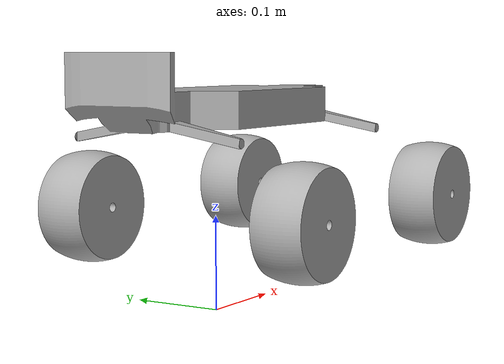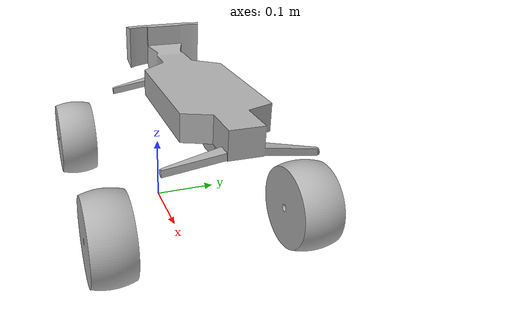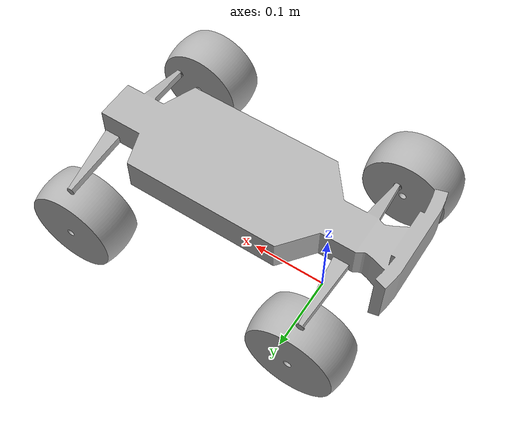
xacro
<?xml version="1.0"?>
<robot xmlns:xacro="http://www.ros.org/wiki/xacro" name="Assembly">

	<material name="silver">
		<color rgba="0.700 0.700 0.700 1.000" />
	</material>

	<xacro:include filename="colours.xacro" />

	<link name="world"></link>

	<joint name="base_joint" type="fixed">
		<origin xyz="0 0 0.2" rpy="0 0 0" />
		<parent link="world" />
		<child link="base_link" />
	</joint>

	<link name="base_link">
		<inertial>
			<origin xyz="0.08003434328119009 -4.607649372668632e-05 -0.06201622629496481"
				rpy="0 0 0" />
			<mass value="1.5183703360911072" />
			<inertia ixx="0.0021618877247405266" iyy="0.0159761652591168" izz="0.017455153748243288"
				ixy="9.179190348702562e-06" iyz="-1.1901109337122696e-07"
				ixz="0.0006927234510902391" />
		</inertial>
		<visual>
			<origin xyz="0 0 0" rpy="0 0 0" />
			<geometry>
				<mesh filename="file://$(find my_robot)/urdf/meshes/base_link.stl" scale="0.001 0.001 0.001" />
			</geometry>
			<material name="silver" />
		</visual>
		<collision>
			<origin xyz="0 0 0" rpy="0 0 0" />
			<geometry>
				<mesh filename="file://$(find my_robot)/urdf/meshes/base_link.stl" scale="0.001 0.001 0.001" />
			</geometry>
		</collision>
	</link>

	<!-- Back right -->
	<link name="Wheel3">
		<inertial>
			<origin xyz="-0.26822757912712586 -0.027500000000000177 0.0837176718765676" rpy="0 0 0" />
			<mass value="0.5775672191550699" />
			<inertia ixx="0.0006304923225378851" iyy="0.0009817859201654384"
				izz="0.0006304923225309185" ixy="-4.336808689942018e-19"
				iyz="-1.734723475976807e-18" ixz="0.0" />
		</inertial>
		<visual>
			<origin xyz="0.042788 0.1025 0.093217" rpy="0 0 0" />
			<geometry>
				<mesh filename="file://$(find my_robot)/urdf/meshes/Wheel3.stl" scale="0.001 0.001 0.001" />
			</geometry>
			<material name="silver" />
		</visual>
		<collision>
			<origin xyz="0.042788 0.1025 0.093217" rpy="0 0 0" />
			<geometry>
				<mesh filename="file://$(find my_robot)/urdf/meshes/Wheel3.stl" scale="0.001 0.001 0.001" />
			</geometry>
		</collision>
	</link>

	<!-- Front right -->
	<link name="Wheel4">
		<inertial>
			<origin xyz="-0.26822757912712575 -0.027500000000000288 0.08371767187656753" rpy="0 0 0" />
			<mass value="0.5775672191550699" />
			<inertia ixx="0.0006304923225378904" iyy="0.0009817859201654358"
				izz="0.0006304923225309081" ixy="-3.469446951953614e-18"
				iyz="-2.6020852139652106e-18" ixz="1.734723475976807e-18" />
		</inertial>
		<visual>
			<origin xyz="-0.52544 0.1025 0.176935" rpy="0 0 0" />
			<geometry>
				<mesh filename="file://$(find my_robot)/urdf/meshes/Wheel4.stl" scale="0.001 0.001 0.001" />
			</geometry>
			<material name="silver" />
		</visual>
		<collision>
			<origin xyz="-0.52544 0.1025 0.176935" rpy="0 0 0" />
			<geometry>
				<mesh filename="file://$(find my_robot)/urdf/meshes/Wheel4.stl" scale="0.001 0.001 0.001" />
			</geometry>
		</collision>
	</link>

	<!-- Front left -->
	<link name="Wheel2">
		<inertial>
			<origin xyz="-0.2682275791271259 0.027500000000000177 0.08371767187656753" rpy="0 0 0" />
			<mass value="0.5775672191550699" />
			<inertia ixx="0.0006304923225378886" iyy="0.0009817859201654289"
				izz="0.000630492322530915" ixy="3.469446951953614e-18" iyz="0.0" ixz="0.0" />
		</inertial>
		<visual>
			<origin xyz="-0.52544 -0.1025 0.176935" rpy="0 0 0" />
			<geometry>
				<mesh filename="file://$(find my_robot)/urdf/meshes/Wheel2.stl" scale="0.001 0.001 0.001" />
			</geometry>
			<material name="silver" />
		</visual>
		<collision>
			<origin xyz="-0.52544 -0.1025 0.176935" rpy="0 0 0" />
			<geometry>
				<mesh filename="file://$(find my_robot)/urdf/meshes/Wheel2.stl" scale="0.001 0.001 0.001" />
			</geometry>
		</collision>
	</link>

	<!-- Back left -->
	<link name="Wheel1">
		<inertial>
			<origin xyz="4.2087287405873086e-07 0.027500000000000094 -3.281234325219762e-07"
				rpy="0 0 0" />
			<mass value="0.5775672191550699" />
			<inertia ixx="0.0006304923225378834" iyy="0.0009817859201654358"
				izz="0.0006304923225309168" ixy="1.734723475976807e-18" iyz="-1.734723475976807e-18"
				ixz="-4.336808689942018e-19" />
		</inertial>
		<visual>
			<origin xyz="0.042788 -0.1025 0.093217" rpy="0 0 0" />
			<geometry>
				<mesh filename="file://$(find my_robot)/urdf/meshes/Wheel1.stl" scale="0.001 0.001 0.001" />
			</geometry>
			<material name="silver" />
		</visual>
		<collision>
			<origin xyz="0.042788 -0.1025 0.093217" rpy="0 0 0" />
			<geometry>
				<mesh filename="file://$(find my_robot)/urdf/meshes/Wheel1.stl" scale="0.001 0.001 0.001" />
			</geometry>
		</collision>
	</link>

	<!-- Good position -->
	<joint name="Revolute_3" type="continuous">
		<origin xyz="-0.042788 -0.1025 -0.093217" rpy="0 0 0" />
		<parent link="base_link" />
		<child link="Wheel3" />
		<axis xyz="0.0 -1.0 0.0" />
	</joint>

	<joint name="Revolute_4" type="continuous">
		<origin xyz="0.52544 -0.1025 -0.176935" rpy="0 0 0" />
		<parent link="base_link" />
		<child link="Wheel4" />
		<axis xyz="0.0 -1.0 0.0" />
	</joint>

	<joint name="Revolute_2" type="continuous">
		<origin xyz="0.52544 0.1025 -0.176935" rpy="0 0 0" />
		<parent link="base_link" />
		<child link="Wheel2" />
		<axis xyz="-0.0 1.0 0.0" />
	</joint>

	<!-- Good position -->
	<joint name="Revolute_1" type="continuous">
		<origin xyz="-0.042788 0.1025 -0.093217" rpy="0 0 0" />
		<parent link="base_link" />
		<child link="Wheel1" />
		<axis xyz="-0.0 1.0 0.0" />
	</joint>

</robot>

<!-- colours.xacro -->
<robot xmlns:xacro="http://www.ros.org/wiki/xacro">

<!-- Some colours -->
  <material name="blue">
    <color rgba="0 0 0.8 1"/>
  </material>

  <material name="red">
    <color rgba="0.8 0 0 1"/>
  </material>

  <material name="white">
    <color rgba="1 1 1 1"/>
  </material>

</robot>
